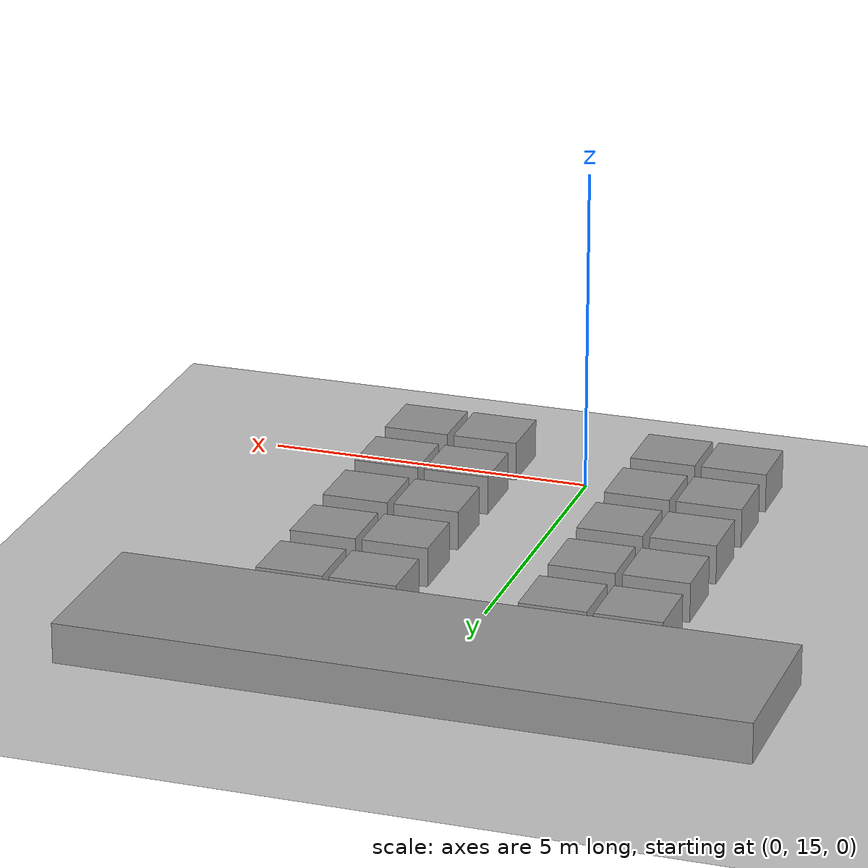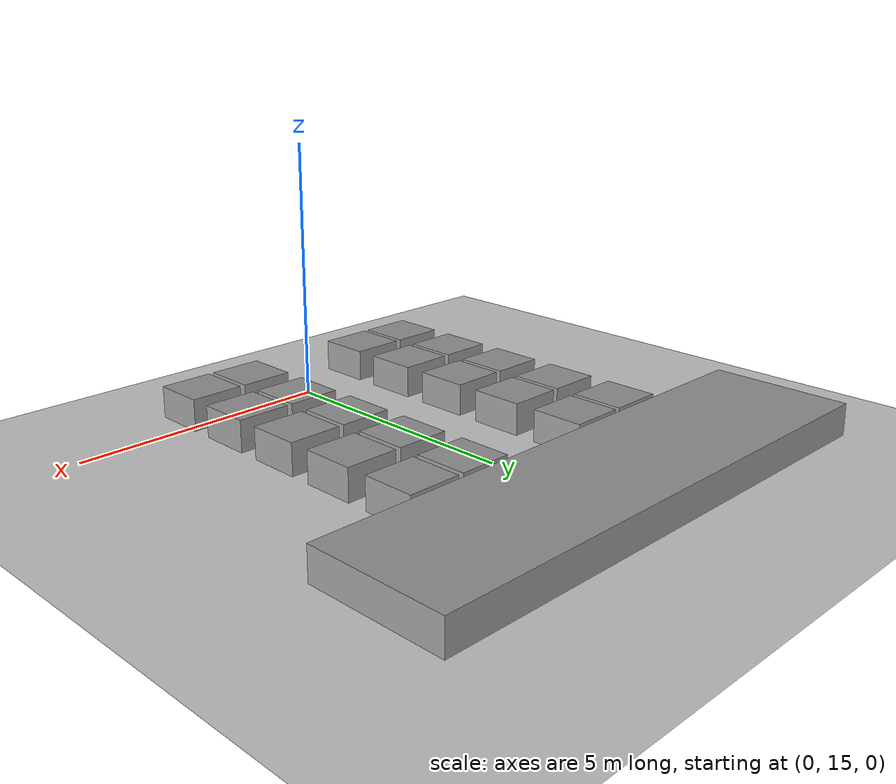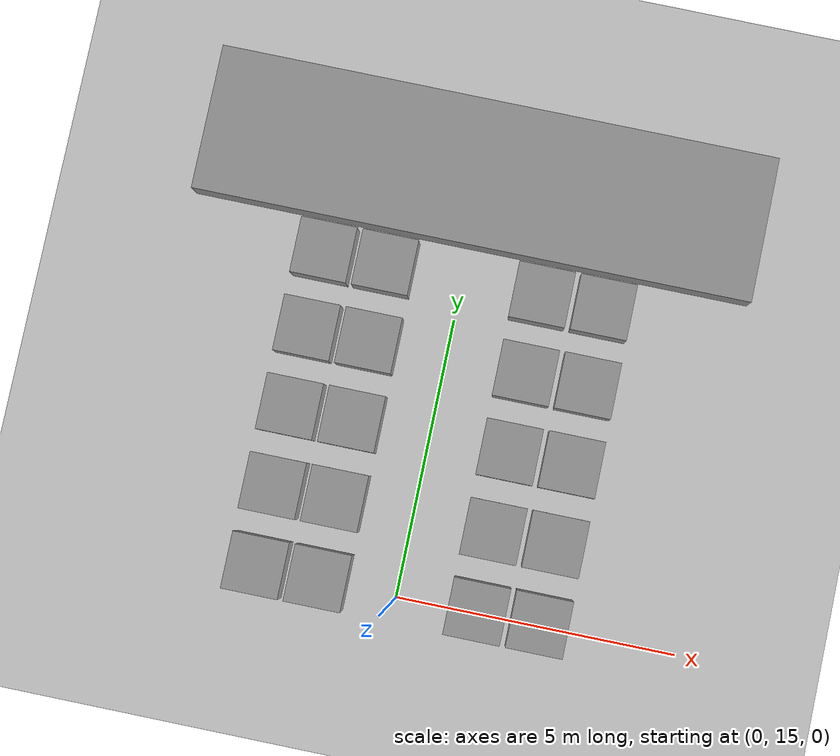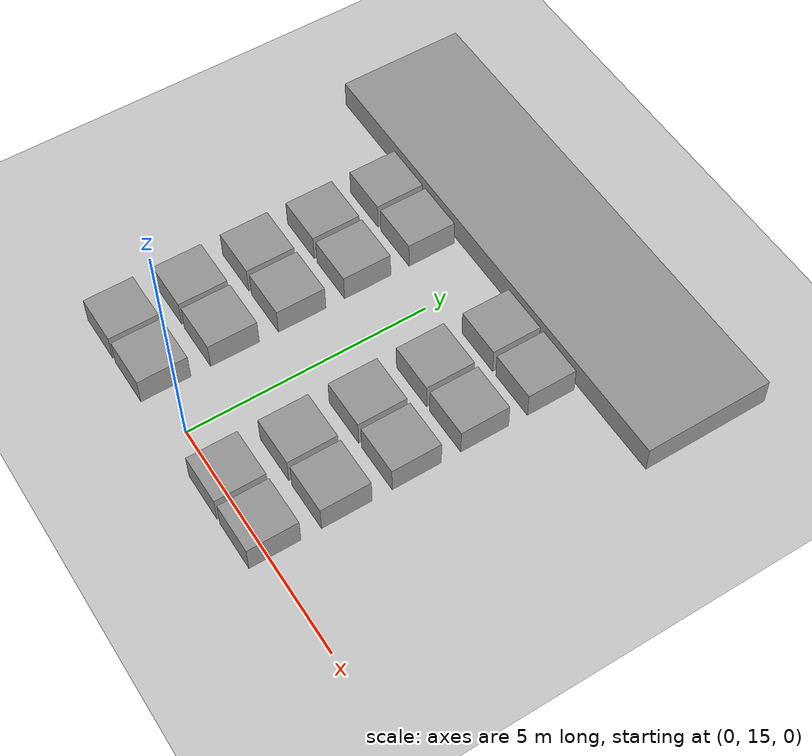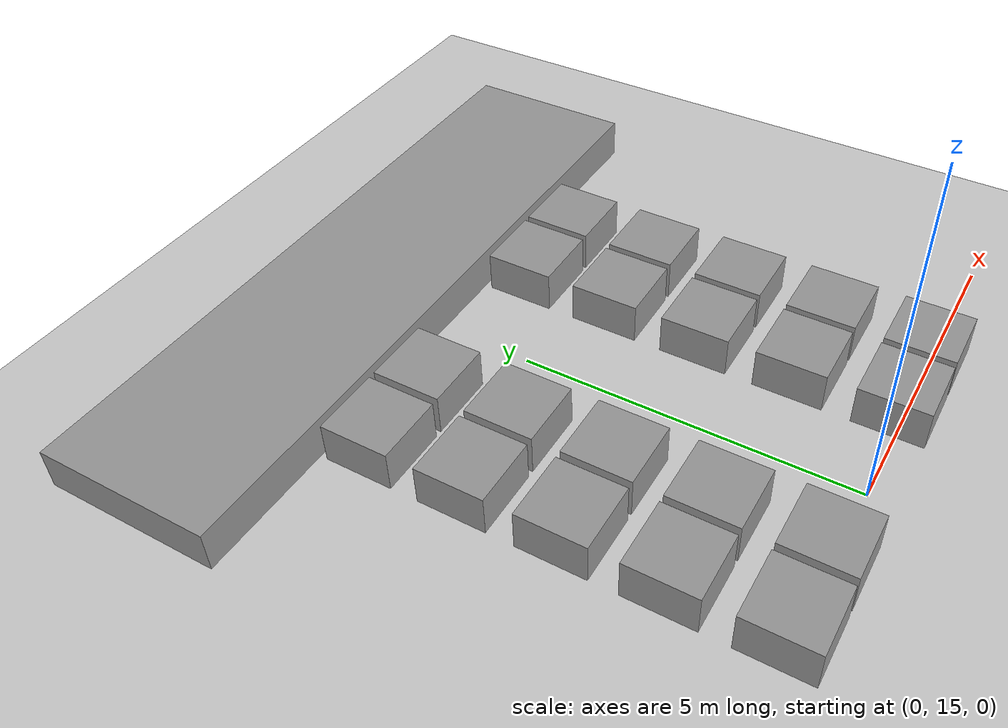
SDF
<sdf version="1.6">
 <world name="default">
  <model name="ground_plane">
   <static>1</static>
   <link name="link">
    <collision name="collision">
     <geometry><plane><normal>0 0 1</normal><size>100 100</size></plane></geometry>
     <surface>
      <contact><collide_bitmask>65535</collide_bitmask></contact>
      <friction><ode><mu>100</mu><mu2>50</mu2></ode></friction>
     </surface>
    </collision>
    <visual name="visual">
     <cast_shadows>0</cast_shadows>
     <geometry><plane><normal>0 0 1</normal><size>100 100</size></plane></geometry>
     <material>
      <script><uri>file://media/materials/scripts/gazebo.material</uri><name>Gazebo/Grey</name></script>
     </material>
    </visual>
   </link>
  </model>
  <model name="Estufa-objetos">
   <link name="link_0_clone_clone_32">
    <inertial>
     <mass>1</mass>
     <inertia>
      <ixx>0.166667</ixx>
      <ixy>0</ixy>
      <ixz>0</ixz>
      <iyy>0.166667</iyy>
      <iyz>0</iyz>
      <izz>0.166667</izz>
     </inertia>
    </inertial>
    <pose>2.5 10.1 0.5 0 -0 0</pose>
    <visual name="visual">
     <geometry><box><size>1 1 0.6</size></box></geometry>
     <material>
      <lighting>1</lighting>
      <script><uri>file://media/materials/scripts/gazebo.material</uri><name>Gazebo/Grey</name></script>
      <shader type="vertex"><normal_map>__default__</normal_map></shader>
      <ambient>0.3 0.3 0.3 1</ambient>
      <diffuse>0.7 0.7 0.7 1</diffuse>
      <specular>0.01 0.01 0.01 1</specular>
      <emissive>0 0 0 1</emissive>
     </material>
    </visual>
    <collision name="collision">
     <geometry><box><size>1 1 0.6</size></box></geometry>
     <surface>
      <friction>
       <ode><mu>1</mu><mu2>1</mu2><fdir1>0 0 0</fdir1><slip1>0</slip1><slip2>0</slip2></ode>
       <torsional>
        <coefficient>1</coefficient>
        <patch_radius>0</patch_radius>
        <surface_radius>0</surface_radius>
        <use_patch_radius>1</use_patch_radius>
        <ode><slip>0</slip></ode>
       </torsional>
      </friction>
      <bounce><restitution_coefficient>0</restitution_coefficient><threshold>1e+06</threshold></bounce>
      <contact>
       <collide_without_contact>0</collide_without_contact>
       <collide_without_contact_bitmask>1</collide_without_contact_bitmask>
       <collide_bitmask>1</collide_bitmask>
       <ode>
        <soft_cfm>0</soft_cfm>
        <soft_erp>0.2</soft_erp>
        <kp>1e+13</kp>
        <kd>1</kd>
        <max_vel>0.01</max_vel>
        <min_depth>0</min_depth>
       </ode>
       <bullet>
        <split_impulse>1</split_impulse>
        <split_impulse_penetration_threshold>-0.01</split_impulse_penetration_threshold>
        <soft_cfm>0</soft_cfm>
        <soft_erp>0.2</soft_erp>
        <kp>1e+13</kp>
        <kd>1</kd>
       </bullet>
      </contact>
     </surface>
    </collision>
   </link>
   <link name="link_0_clone_clone_33">
    <inertial>
     <mass>1</mass>
     <inertia>
      <ixx>0.166667</ixx>
      <ixy>0</ixy>
      <ixz>0</ixz>
      <iyy>0.166667</iyy>
      <iyz>0</iyz>
      <izz>0.166667</izz>
     </inertia>
    </inertial>
    <pose>1.4 10.1 0.5 0 -0 0</pose>
    <visual name="visual">
     <geometry><box><size>1 1 0.6</size></box></geometry>
     <material>
      <lighting>1</lighting>
      <script><uri>file://media/materials/scripts/gazebo.material</uri><name>Gazebo/Grey</name></script>
      <shader type="vertex"><normal_map>__default__</normal_map></shader>
      <ambient>0.3 0.3 0.3 1</ambient>
      <diffuse>0.7 0.7 0.7 1</diffuse>
      <specular>0.01 0.01 0.01 1</specular>
      <emissive>0 0 0 1</emissive>
     </material>
    </visual>
    <collision name="collision">
     <geometry><box><size>1 1 0.6</size></box></geometry>
     <surface>
      <friction>
       <ode><mu>1</mu><mu2>1</mu2><fdir1>0 0 0</fdir1><slip1>0</slip1><slip2>0</slip2></ode>
       <torsional>
        <coefficient>1</coefficient>
        <patch_radius>0</patch_radius>
        <surface_radius>0</surface_radius>
        <use_patch_radius>1</use_patch_radius>
        <ode><slip>0</slip></ode>
       </torsional>
      </friction>
      <bounce><restitution_coefficient>0</restitution_coefficient><threshold>1e+06</threshold></bounce>
      <contact>
       <collide_without_contact>0</collide_without_contact>
       <collide_without_contact_bitmask>1</collide_without_contact_bitmask>
       <collide_bitmask>1</collide_bitmask>
       <ode>
        <soft_cfm>0</soft_cfm>
        <soft_erp>0.2</soft_erp>
        <kp>1e+13</kp>
        <kd>1</kd>
        <max_vel>0.01</max_vel>
        <min_depth>0</min_depth>
       </ode>
       <bullet>
        <split_impulse>1</split_impulse>
        <split_impulse_penetration_threshold>-0.01</split_impulse_penetration_threshold>
        <soft_cfm>0</soft_cfm>
        <soft_erp>0.2</soft_erp>
        <kp>1e+13</kp>
        <kd>1</kd>
       </bullet>
      </contact>
     </surface>
    </collision>
   </link>
   <link name="link_0_clone_clone_34">
    <inertial>
     <mass>1</mass>
     <inertia>
      <ixx>0.166667</ixx>
      <ixy>0</ixy>
      <ixz>0</ixz>
      <iyy>0.166667</iyy>
      <iyz>0</iyz>
      <izz>0.166667</izz>
     </inertia>
    </inertial>
    <pose>-1.4 10.1 0.5 0 -0 0</pose>
    <visual name="visual">
     <geometry><box><size>1 1 0.6</size></box></geometry>
     <material>
      <lighting>1</lighting>
      <script><uri>file://media/materials/scripts/gazebo.material</uri><name>Gazebo/Grey</name></script>
      <shader type="vertex"><normal_map>__default__</normal_map></shader>
      <ambient>0.3 0.3 0.3 1</ambient>
      <diffuse>0.7 0.7 0.7 1</diffuse>
      <specular>0.01 0.01 0.01 1</specular>
      <emissive>0 0 0 1</emissive>
     </material>
    </visual>
    <collision name="collision">
     <geometry><box><size>1 1 0.6</size></box></geometry>
     <surface>
      <friction>
       <ode><mu>1</mu><mu2>1</mu2><fdir1>0 0 0</fdir1><slip1>0</slip1><slip2>0</slip2></ode>
       <torsional>
        <coefficient>1</coefficient>
        <patch_radius>0</patch_radius>
        <surface_radius>0</surface_radius>
        <use_patch_radius>1</use_patch_radius>
        <ode><slip>0</slip></ode>
       </torsional>
      </friction>
      <bounce><restitution_coefficient>0</restitution_coefficient><threshold>1e+06</threshold></bounce>
      <contact>
       <collide_without_contact>0</collide_without_contact>
       <collide_without_contact_bitmask>1</collide_without_contact_bitmask>
       <collide_bitmask>1</collide_bitmask>
       <ode>
        <soft_cfm>0</soft_cfm>
        <soft_erp>0.2</soft_erp>
        <kp>1e+13</kp>
        <kd>1</kd>
        <max_vel>0.01</max_vel>
        <min_depth>0</min_depth>
       </ode>
       <bullet>
        <split_impulse>1</split_impulse>
        <split_impulse_penetration_threshold>-0.01</split_impulse_penetration_threshold>
        <soft_cfm>0</soft_cfm>
        <soft_erp>0.2</soft_erp>
        <kp>1e+13</kp>
        <kd>1</kd>
       </bullet>
      </contact>
     </surface>
    </collision>
   </link>
   <link name="link_0_clone_clone_35">
    <inertial>
     <mass>1</mass>
     <inertia>
      <ixx>0.166667</ixx>
      <ixy>0</ixy>
      <ixz>0</ixz>
      <iyy>0.166667</iyy>
      <iyz>0</iyz>
      <izz>0.166667</izz>
     </inertia>
    </inertial>
    <pose>-2.5 10.1 0.5 0 -0 0</pose>
    <visual name="visual">
     <geometry><box><size>1 1 0.6</size></box></geometry>
     <material>
      <lighting>1</lighting>
      <script><uri>file://media/materials/scripts/gazebo.material</uri><name>Gazebo/Grey</name></script>
      <shader type="vertex"><normal_map>__default__</normal_map></shader>
      <ambient>0.3 0.3 0.3 1</ambient>
      <diffuse>0.7 0.7 0.7 1</diffuse>
      <specular>0.01 0.01 0.01 1</specular>
      <emissive>0 0 0 1</emissive>
     </material>
    </visual>
    <collision name="collision">
     <geometry><box><size>1 1 0.6</size></box></geometry>
     <surface>
      <friction>
       <ode><mu>1</mu><mu2>1</mu2><fdir1>0 0 0</fdir1><slip1>0</slip1><slip2>0</slip2></ode>
       <torsional>
        <coefficient>1</coefficient>
        <patch_radius>0</patch_radius>
        <surface_radius>0</surface_radius>
        <use_patch_radius>1</use_patch_radius>
        <ode><slip>0</slip></ode>
       </torsional>
      </friction>
      <bounce><restitution_coefficient>0</restitution_coefficient><threshold>1e+06</threshold></bounce>
      <contact>
       <collide_without_contact>0</collide_without_contact>
       <collide_without_contact_bitmask>1</collide_without_contact_bitmask>
       <collide_bitmask>1</collide_bitmask>
       <ode>
        <soft_cfm>0</soft_cfm>
        <soft_erp>0.2</soft_erp>
        <kp>1e+13</kp>
        <kd>1</kd>
        <max_vel>0.01</max_vel>
        <min_depth>0</min_depth>
       </ode>
       <bullet>
        <split_impulse>1</split_impulse>
        <split_impulse_penetration_threshold>-0.01</split_impulse_penetration_threshold>
        <soft_cfm>0</soft_cfm>
        <soft_erp>0.2</soft_erp>
        <kp>1e+13</kp>
        <kd>1</kd>
       </bullet>
      </contact>
     </surface>
    </collision>
   </link>
   <link name="link_0_clone_clone_36">
    <inertial>
     <mass>1</mass>
     <inertia>
      <ixx>0.166667</ixx>
      <ixy>0</ixy>
      <ixz>0</ixz>
      <iyy>0.166667</iyy>
      <iyz>0</iyz>
      <izz>0.166667</izz>
     </inertia>
    </inertial>
    <pose>2.5 11.5 0.5 0 -0 0</pose>
    <visual name="visual">
     <geometry><box><size>1 1 0.6</size></box></geometry>
     <material>
      <lighting>1</lighting>
      <script><uri>file://media/materials/scripts/gazebo.material</uri><name>Gazebo/Grey</name></script>
      <shader type="vertex"><normal_map>__default__</normal_map></shader>
      <ambient>0.3 0.3 0.3 1</ambient>
      <diffuse>0.7 0.7 0.7 1</diffuse>
      <specular>0.01 0.01 0.01 1</specular>
      <emissive>0 0 0 1</emissive>
     </material>
    </visual>
    <collision name="collision">
     <geometry><box><size>1 1 0.6</size></box></geometry>
     <surface>
      <friction>
       <ode><mu>1</mu><mu2>1</mu2><fdir1>0 0 0</fdir1><slip1>0</slip1><slip2>0</slip2></ode>
       <torsional>
        <coefficient>1</coefficient>
        <patch_radius>0</patch_radius>
        <surface_radius>0</surface_radius>
        <use_patch_radius>1</use_patch_radius>
        <ode><slip>0</slip></ode>
       </torsional>
      </friction>
      <bounce><restitution_coefficient>0</restitution_coefficient><threshold>1e+06</threshold></bounce>
      <contact>
       <collide_without_contact>0</collide_without_contact>
       <collide_without_contact_bitmask>1</collide_without_contact_bitmask>
       <collide_bitmask>1</collide_bitmask>
       <ode>
        <soft_cfm>0</soft_cfm>
        <soft_erp>0.2</soft_erp>
        <kp>1e+13</kp>
        <kd>1</kd>
        <max_vel>0.01</max_vel>
        <min_depth>0</min_depth>
       </ode>
       <bullet>
        <split_impulse>1</split_impulse>
        <split_impulse_penetration_threshold>-0.01</split_impulse_penetration_threshold>
        <soft_cfm>0</soft_cfm>
        <soft_erp>0.2</soft_erp>
        <kp>1e+13</kp>
        <kd>1</kd>
       </bullet>
      </contact>
     </surface>
    </collision>
   </link>
   <link name="link_0_clone_clone_37">
    <inertial>
     <mass>1</mass>
     <inertia>
      <ixx>0.166667</ixx>
      <ixy>0</ixy>
      <ixz>0</ixz>
      <iyy>0.166667</iyy>
      <iyz>0</iyz>
      <izz>0.166667</izz>
     </inertia>
    </inertial>
    <pose>1.4 11.5 0.5 0 -0 0</pose>
    <visual name="visual">
     <geometry><box><size>1 1 0.6</size></box></geometry>
     <material>
      <lighting>1</lighting>
      <script><uri>file://media/materials/scripts/gazebo.material</uri><name>Gazebo/Grey</name></script>
      <shader type="vertex"><normal_map>__default__</normal_map></shader>
      <ambient>0.3 0.3 0.3 1</ambient>
      <diffuse>0.7 0.7 0.7 1</diffuse>
      <specular>0.01 0.01 0.01 1</specular>
      <emissive>0 0 0 1</emissive>
     </material>
    </visual>
    <collision name="collision">
     <geometry><box><size>1 1 0.6</size></box></geometry>
     <surface>
      <friction>
       <ode><mu>1</mu><mu2>1</mu2><fdir1>0 0 0</fdir1><slip1>0</slip1><slip2>0</slip2></ode>
       <torsional>
        <coefficient>1</coefficient>
        <patch_radius>0</patch_radius>
        <surface_radius>0</surface_radius>
        <use_patch_radius>1</use_patch_radius>
        <ode><slip>0</slip></ode>
       </torsional>
      </friction>
      <bounce><restitution_coefficient>0</restitution_coefficient><threshold>1e+06</threshold></bounce>
      <contact>
       <collide_without_contact>0</collide_without_contact>
       <collide_without_contact_bitmask>1</collide_without_contact_bitmask>
       <collide_bitmask>1</collide_bitmask>
       <ode>
        <soft_cfm>0</soft_cfm>
        <soft_erp>0.2</soft_erp>
        <kp>1e+13</kp>
        <kd>1</kd>
        <max_vel>0.01</max_vel>
        <min_depth>0</min_depth>
       </ode>
       <bullet>
        <split_impulse>1</split_impulse>
        <split_impulse_penetration_threshold>-0.01</split_impulse_penetration_threshold>
        <soft_cfm>0</soft_cfm>
        <soft_erp>0.2</soft_erp>
        <kp>1e+13</kp>
        <kd>1</kd>
       </bullet>
      </contact>
     </surface>
    </collision>
   </link>
   <link name="link_0_clone_clone_38">
    <inertial>
     <mass>1</mass>
     <inertia>
      <ixx>0.166667</ixx>
      <ixy>0</ixy>
      <ixz>0</ixz>
      <iyy>0.166667</iyy>
      <iyz>0</iyz>
      <izz>0.166667</izz>
     </inertia>
    </inertial>
    <pose>-1.4 11.5 0.5 0 -0 0</pose>
    <visual name="visual">
     <geometry><box><size>1 1 0.6</size></box></geometry>
     <material>
      <lighting>1</lighting>
      <script><uri>file://media/materials/scripts/gazebo.material</uri><name>Gazebo/Grey</name></script>
      <shader type="vertex"><normal_map>__default__</normal_map></shader>
      <ambient>0.3 0.3 0.3 1</ambient>
      <diffuse>0.7 0.7 0.7 1</diffuse>
      <specular>0.01 0.01 0.01 1</specular>
      <emissive>0 0 0 1</emissive>
     </material>
    </visual>
    <collision name="collision">
     <geometry><box><size>1 1 0.6</size></box></geometry>
     <surface>
      <friction>
       <ode><mu>1</mu><mu2>1</mu2><fdir1>0 0 0</fdir1><slip1>0</slip1><slip2>0</slip2></ode>
       <torsional>
        <coefficient>1</coefficient>
        <patch_radius>0</patch_radius>
        <surface_radius>0</surface_radius>
        <use_patch_radius>1</use_patch_radius>
        <ode><slip>0</slip></ode>
       </torsional>
      </friction>
      <bounce><restitution_coefficient>0</restitution_coefficient><threshold>1e+06</threshold></bounce>
      <contact>
       <collide_without_contact>0</collide_without_contact>
       <collide_without_contact_bitmask>1</collide_without_contact_bitmask>
       <collide_bitmask>1</collide_bitmask>
       <ode>
        <soft_cfm>0</soft_cfm>
        <soft_erp>0.2</soft_erp>
        <kp>1e+13</kp>
        <kd>1</kd>
        <max_vel>0.01</max_vel>
        <min_depth>0</min_depth>
       </ode>
       <bullet>
        <split_impulse>1</split_impulse>
        <split_impulse_penetration_threshold>-0.01</split_impulse_penetration_threshold>
        <soft_cfm>0</soft_cfm>
        <soft_erp>0.2</soft_erp>
        <kp>1e+13</kp>
        <kd>1</kd>
       </bullet>
      </contact>
     </surface>
    </collision>
   </link>
   <link name="link_0_clone_clone_39">
    <inertial>
     <mass>1</mass>
     <inertia>
      <ixx>0.166667</ixx>
      <ixy>0</ixy>
      <ixz>0</ixz>
      <iyy>0.166667</iyy>
      <iyz>0</iyz>
      <izz>0.166667</izz>
     </inertia>
    </inertial>
    <pose>-2.5 11.5 0.5 0 -0 0</pose>
    <visual name="visual">
     <geometry><box><size>1 1 0.6</size></box></geometry>
     <material>
      <lighting>1</lighting>
      <script><uri>file://media/materials/scripts/gazebo.material</uri><name>Gazebo/Grey</name></script>
      <shader type="vertex"><normal_map>__default__</normal_map></shader>
      <ambient>0.3 0.3 0.3 1</ambient>
      <diffuse>0.7 0.7 0.7 1</diffuse>
      <specular>0.01 0.01 0.01 1</specular>
      <emissive>0 0 0 1</emissive>
     </material>
    </visual>
    <collision name="collision">
     <geometry><box><size>1 1 0.6</size></box></geometry>
     <surface>
      <friction>
       <ode><mu>1</mu><mu2>1</mu2><fdir1>0 0 0</fdir1><slip1>0</slip1><slip2>0</slip2></ode>
       <torsional>
        <coefficient>1</coefficient>
        <patch_radius>0</patch_radius>
        <surface_radius>0</surface_radius>
        <use_patch_radius>1</use_patch_radius>
        <ode><slip>0</slip></ode>
       </torsional>
      </friction>
      <bounce><restitution_coefficient>0</restitution_coefficient><threshold>1e+06</threshold></bounce>
      <contact>
       <collide_without_contact>0</collide_without_contact>
       <collide_without_contact_bitmask>1</collide_without_contact_bitmask>
       <collide_bitmask>1</collide_bitmask>
       <ode>
        <soft_cfm>0</soft_cfm>
        <soft_erp>0.2</soft_erp>
        <kp>1e+13</kp>
        <kd>1</kd>
        <max_vel>0.01</max_vel>
        <min_depth>0</min_depth>
       </ode>
       <bullet>
        <split_impulse>1</split_impulse>
        <split_impulse_penetration_threshold>-0.01</split_impulse_penetration_threshold>
        <soft_cfm>0</soft_cfm>
        <soft_erp>0.2</soft_erp>
        <kp>1e+13</kp>
        <kd>1</kd>
       </bullet>
      </contact>
     </surface>
    </collision>
   </link>
   <link name="link_0_clone_clone_40">
    <inertial>
     <mass>1</mass>
     <inertia>
      <ixx>0.166667</ixx>
      <ixy>0</ixy>
      <ixz>0</ixz>
      <iyy>0.166667</iyy>
      <iyz>0</iyz>
      <izz>0.166667</izz>
     </inertia>
    </inertial>
    <pose>2.5 12.9 0.5 0 -0 0</pose>
    <visual name="visual">
     <geometry><box><size>1 1 0.6</size></box></geometry>
     <material>
      <lighting>1</lighting>
      <script><uri>file://media/materials/scripts/gazebo.material</uri><name>Gazebo/Grey</name></script>
      <shader type="vertex"><normal_map>__default__</normal_map></shader>
      <ambient>0.3 0.3 0.3 1</ambient>
      <diffuse>0.7 0.7 0.7 1</diffuse>
      <specular>0.01 0.01 0.01 1</specular>
      <emissive>0 0 0 1</emissive>
     </material>
    </visual>
    <collision name="collision">
     <geometry><box><size>1 1 0.6</size></box></geometry>
     <surface>
      <friction>
       <ode><mu>1</mu><mu2>1</mu2><fdir1>0 0 0</fdir1><slip1>0</slip1><slip2>0</slip2></ode>
       <torsional>
        <coefficient>1</coefficient>
        <patch_radius>0</patch_radius>
        <surface_radius>0</surface_radius>
        <use_patch_radius>1</use_patch_radius>
        <ode><slip>0</slip></ode>
       </torsional>
      </friction>
      <bounce><restitution_coefficient>0</restitution_coefficient><threshold>1e+06</threshold></bounce>
      <contact>
       <collide_without_contact>0</collide_without_contact>
       <collide_without_contact_bitmask>1</collide_without_contact_bitmask>
       <collide_bitmask>1</collide_bitmask>
       <ode>
        <soft_cfm>0</soft_cfm>
        <soft_erp>0.2</soft_erp>
        <kp>1e+13</kp>
        <kd>1</kd>
        <max_vel>0.01</max_vel>
        <min_depth>0</min_depth>
       </ode>
       <bullet>
        <split_impulse>1</split_impulse>
        <split_impulse_penetration_threshold>-0.01</split_impulse_penetration_threshold>
        <soft_cfm>0</soft_cfm>
        <soft_erp>0.2</soft_erp>
        <kp>1e+13</kp>
        <kd>1</kd>
       </bullet>
      </contact>
     </surface>
    </collision>
   </link>
   <link name="link_0_clone_clone_41">
    <inertial>
     <mass>1</mass>
     <inertia>
      <ixx>0.166667</ixx>
      <ixy>0</ixy>
      <ixz>0</ixz>
      <iyy>0.166667</iyy>
      <iyz>0</iyz>
      <izz>0.166667</izz>
     </inertia>
    </inertial>
    <pose>2.5 14.3 0.5 0 -0 0</pose>
    <visual name="visual">
     <geometry><box><size>1 1 0.6</size></box></geometry>
     <material>
      <lighting>1</lighting>
      <script><uri>file://media/materials/scripts/gazebo.material</uri><name>Gazebo/Grey</name></script>
      <shader type="vertex"><normal_map>__default__</normal_map></shader>
      <ambient>0.3 0.3 0.3 1</ambient>
      <diffuse>0.7 0.7 0.7 1</diffuse>
      <specular>0.01 0.01 0.01 1</specular>
      <emissive>0 0 0 1</emissive>
     </material>
    </visual>
    <collision name="collision">
     <geometry><box><size>1 1 0.6</size></box></geometry>
     <surface>
      <friction>
       <ode><mu>1</mu><mu2>1</mu2><fdir1>0 0 0</fdir1><slip1>0</slip1><slip2>0</slip2></ode>
       <torsional>
        <coefficient>1</coefficient>
        <patch_radius>0</patch_radius>
        <surface_radius>0</surface_radius>
        <use_patch_radius>1</use_patch_radius>
        <ode><slip>0</slip></ode>
       </torsional>
      </friction>
      <bounce><restitution_coefficient>0</restitution_coefficient><threshold>1e+06</threshold></bounce>
      <contact>
       <collide_without_contact>0</collide_without_contact>
       <collide_without_contact_bitmask>1</collide_without_contact_bitmask>
       <collide_bitmask>1</collide_bitmask>
       <ode>
        <soft_cfm>0</soft_cfm>
        <soft_erp>0.2</soft_erp>
        <kp>1e+13</kp>
        <kd>1</kd>
        <max_vel>0.01</max_vel>
        <min_depth>0</min_depth>
       </ode>
       <bullet>
        <split_impulse>1</split_impulse>
        <split_impulse_penetration_threshold>-0.01</split_impulse_penetration_threshold>
        <soft_cfm>0</soft_cfm>
        <soft_erp>0.2</soft_erp>
        <kp>1e+13</kp>
        <kd>1</kd>
       </bullet>
      </contact>
     </surface>
    </collision>
   </link>
   <link name="link_0_clone_clone_42">
    <inertial>
     <mass>1</mass>
     <inertia>
      <ixx>0.166667</ixx>
      <ixy>0</ixy>
      <ixz>0</ixz>
      <iyy>0.166667</iyy>
      <iyz>0</iyz>
      <izz>0.166667</izz>
     </inertia>
    </inertial>
    <pose>2.5 15.7 0.5 0 -0 0</pose>
    <visual name="visual">
     <geometry><box><size>1 1 0.6</size></box></geometry>
     <material>
      <lighting>1</lighting>
      <script><uri>file://media/materials/scripts/gazebo.material</uri><name>Gazebo/Grey</name></script>
      <shader type="vertex"><normal_map>__default__</normal_map></shader>
      <ambient>0.3 0.3 0.3 1</ambient>
      <diffuse>0.7 0.7 0.7 1</diffuse>
      <specular>0.01 0.01 0.01 1</specular>
      <emissive>0 0 0 1</emissive>
     </material>
    </visual>
    <collision name="collision">
     <geometry><box><size>1 1 0.6</size></box></geometry>
     <surface>
      <friction>
       <ode><mu>1</mu><mu2>1</mu2><fdir1>0 0 0</fdir1><slip1>0</slip1><slip2>0</slip2></ode>
       <torsional>
        <coefficient>1</coefficient>
        <patch_radius>0</patch_radius>
        <surface_radius>0</surface_radius>
        <use_patch_radius>1</use_patch_radius>
        <ode><slip>0</slip></ode>
       </torsional>
      </friction>
      <bounce><restitution_coefficient>0</restitution_coefficient><threshold>1e+06</threshold></bounce>
      <contact>
       <collide_without_contact>0</collide_without_contact>
       <collide_without_contact_bitmask>1</collide_without_contact_bitmask>
       <collide_bitmask>1</collide_bitmask>
       <ode>
        <soft_cfm>0</soft_cfm>
        <soft_erp>0.2</soft_erp>
        <kp>1e+13</kp>
        <kd>1</kd>
        <max_vel>0.01</max_vel>
        <min_depth>0</min_depth>
       </ode>
       <bullet>
        <split_impulse>1</split_impulse>
        <split_impulse_penetration_threshold>-0.01</split_impulse_penetration_threshold>
        <soft_cfm>0</soft_cfm>
        <soft_erp>0.2</soft_erp>
        <kp>1e+13</kp>
        <kd>1</kd>
       </bullet>
      </contact>
     </surface>
    </collision>
   </link>
   <link name="link_0_clone_clone_43">
    <inertial>
     <mass>1</mass>
     <inertia>
      <ixx>0.166667</ixx>
      <ixy>0</ixy>
      <ixz>0</ixz>
      <iyy>0.166667</iyy>
      <iyz>0</iyz>
      <izz>0.166667</izz>
     </inertia>
    </inertial>
    <pose>1.4 12.9 0.5 0 -0 0</pose>
    <visual name="visual">
     <geometry><box><size>1 1 0.6</size></box></geometry>
     <material>
      <lighting>1</lighting>
      <script><uri>file://media/materials/scripts/gazebo.material</uri><name>Gazebo/Grey</name></script>
      <shader type="vertex"><normal_map>__default__</normal_map></shader>
      <ambient>0.3 0.3 0.3 1</ambient>
      <diffuse>0.7 0.7 0.7 1</diffuse>
      <specular>0.01 0.01 0.01 1</specular>
      <emissive>0 0 0 1</emissive>
     </material>
    </visual>
    <collision name="collision">
     <geometry><box><size>1 1 0.6</size></box></geometry>
     <surface>
      <friction>
       <ode><mu>1</mu><mu2>1</mu2><fdir1>0 0 0</fdir1><slip1>0</slip1><slip2>0</slip2></ode>
       <torsional>
        <coefficient>1</coefficient>
        <patch_radius>0</patch_radius>
        <surface_radius>0</surface_radius>
        <use_patch_radius>1</use_patch_radius>
        <ode><slip>0</slip></ode>
       </torsional>
      </friction>
      <bounce><restitution_coefficient>0</restitution_coefficient><threshold>1e+06</threshold></bounce>
      <contact>
       <collide_without_contact>0</collide_without_contact>
       <collide_without_contact_bitmask>1</collide_without_contact_bitmask>
       <collide_bitmask>1</collide_bitmask>
       <ode>
        <soft_cfm>0</soft_cfm>
        <soft_erp>0.2</soft_erp>
        <kp>1e+13</kp>
        <kd>1</kd>
        <max_vel>0.01</max_vel>
        <min_depth>0</min_depth>
       </ode>
       <bullet>
        <split_impulse>1</split_impulse>
        <split_impulse_penetration_threshold>-0.01</split_impulse_penetration_threshold>
        <soft_cfm>0</soft_cfm>
        <soft_erp>0.2</soft_erp>
        <kp>1e+13</kp>
        <kd>1</kd>
       </bullet>
      </contact>
     </surface>
    </collision>
   </link>
   <link name="link_0_clone_clone_44">
    <inertial>
     <mass>1</mass>
     <inertia>
      <ixx>0.166667</ixx>
      <ixy>0</ixy>
      <ixz>0</ixz>
      <iyy>0.166667</iyy>
      <iyz>0</iyz>
      <izz>0.166667</izz>
     </inertia>
    </inertial>
    <pose>1.4 14.3 0.5 0 -0 0</pose>
    <visual name="visual">
     <geometry><box><size>1 1 0.6</size></box></geometry>
     <material>
      <lighting>1</lighting>
      <script><uri>file://media/materials/scripts/gazebo.material</uri><name>Gazebo/Grey</name></script>
      <shader type="vertex"><normal_map>__default__</normal_map></shader>
      <ambient>0.3 0.3 0.3 1</ambient>
      <diffuse>0.7 0.7 0.7 1</diffuse>
      <specular>0.01 0.01 0.01 1</specular>
      <emissive>0 0 0 1</emissive>
     </material>
    </visual>
    <collision name="collision">
     <geometry><box><size>1 1 0.6</size></box></geometry>
     <surface>
      <friction>
       <ode><mu>1</mu><mu2>1</mu2><fdir1>0 0 0</fdir1><slip1>0</slip1><slip2>0</slip2></ode>
       <torsional>
        <coefficient>1</coefficient>
        <patch_radius>0</patch_radius>
        <surface_radius>0</surface_radius>
        <use_patch_radius>1</use_patch_radius>
        <ode><slip>0</slip></ode>
       </torsional>
      </friction>
      <bounce><restitution_coefficient>0</restitution_coefficient><threshold>1e+06</threshold></bounce>
      <contact>
       <collide_without_contact>0</collide_without_contact>
       <collide_without_contact_bitmask>1</collide_without_contact_bitmask>
       <collide_bitmask>1</collide_bitmask>
       <ode>
        <soft_cfm>0</soft_cfm>
        <soft_erp>0.2</soft_erp>
        <kp>1e+13</kp>
        <kd>1</kd>
        <max_vel>0.01</max_vel>
        <min_depth>0</min_depth>
       </ode>
       <bullet>
        <split_impulse>1</split_impulse>
        <split_impulse_penetration_threshold>-0.01</split_impulse_penetration_threshold>
        <soft_cfm>0</soft_cfm>
        <soft_erp>0.2</soft_erp>
        <kp>1e+13</kp>
        <kd>1</kd>
       </bullet>
      </contact>
     </surface>
    </collision>
   </link>
   <link name="link_0_clone_clone_45">
    <inertial>
     <mass>1</mass>
     <inertia>
      <ixx>0.166667</ixx>
      <ixy>0</ixy>
      <ixz>0</ixz>
      <iyy>0.166667</iyy>
      <iyz>0</iyz>
      <izz>0.166667</izz>
     </inertia>
    </inertial>
    <pose>1.4 15.7 0.5 0 -0 0</pose>
    <visual name="visual">
     <geometry><box><size>1 1 0.6</size></box></geometry>
     <material>
      <lighting>1</lighting>
      <script><uri>file://media/materials/scripts/gazebo.material</uri><name>Gazebo/Grey</name></script>
      <shader type="vertex"><normal_map>__default__</normal_map></shader>
      <ambient>0.3 0.3 0.3 1</ambient>
      <diffuse>0.7 0.7 0.7 1</diffuse>
      <specular>0.01 0.01 0.01 1</specular>
      <emissive>0 0 0 1</emissive>
     </material>
    </visual>
    <collision name="collision">
     <geometry><box><size>1 1 0.6</size></box></geometry>
     <surface>
      <friction>
       <ode><mu>1</mu><mu2>1</mu2><fdir1>0 0 0</fdir1><slip1>0</slip1><slip2>0</slip2></ode>
       <torsional>
        <coefficient>1</coefficient>
        <patch_radius>0</patch_radius>
        <surface_radius>0</surface_radius>
        <use_patch_radius>1</use_patch_radius>
        <ode><slip>0</slip></ode>
       </torsional>
      </friction>
      <bounce><restitution_coefficient>0</restitution_coefficient><threshold>1e+06</threshold></bounce>
      <contact>
       <collide_without_contact>0</collide_without_contact>
       <collide_without_contact_bitmask>1</collide_without_contact_bitmask>
       <collide_bitmask>1</collide_bitmask>
       <ode>
        <soft_cfm>0</soft_cfm>
        <soft_erp>0.2</soft_erp>
        <kp>1e+13</kp>
        <kd>1</kd>
        <max_vel>0.01</max_vel>
        <min_depth>0</min_depth>
       </ode>
       <bullet>
        <split_impulse>1</split_impulse>
        <split_impulse_penetration_threshold>-0.01</split_impulse_penetration_threshold>
        <soft_cfm>0</soft_cfm>
        <soft_erp>0.2</soft_erp>
        <kp>1e+13</kp>
        <kd>1</kd>
       </bullet>
      </contact>
     </surface>
    </collision>
   </link>
   <link name="link_0_clone_clone_46">
    <inertial>
     <mass>1</mass>
     <inertia>
      <ixx>0.166667</ixx>
      <ixy>0</ixy>
      <ixz>0</ixz>
      <iyy>0.166667</iyy>
      <iyz>0</iyz>
      <izz>0.166667</izz>
     </inertia>
    </inertial>
    <pose>-1.4 12.9 0.5 0 -0 0</pose>
    <visual name="visual">
     <geometry><box><size>1 1 0.6</size></box></geometry>
     <material>
      <lighting>1</lighting>
      <script><uri>file://media/materials/scripts/gazebo.material</uri><name>Gazebo/Grey</name></script>
      <shader type="vertex"><normal_map>__default__</normal_map></shader>
      <ambient>0.3 0.3 0.3 1</ambient>
      <diffuse>0.7 0.7 0.7 1</diffuse>
      <specular>0.01 0.01 0.01 1</specular>
      <emissive>0 0 0 1</emissive>
     </material>
    </visual>
    <collision name="collision">
     <geometry><box><size>1 1 0.6</size></box></geometry>
     <surface>
      <friction>
       <ode><mu>1</mu><mu2>1</mu2><fdir1>0 0 0</fdir1><slip1>0</slip1><slip2>0</slip2></ode>
       <torsional>
        <coefficient>1</coefficient>
        <patch_radius>0</patch_radius>
        <surface_radius>0</surface_radius>
        <use_patch_radius>1</use_patch_radius>
        <ode><slip>0</slip></ode>
       </torsional>
      </friction>
      <bounce><restitution_coefficient>0</restitution_coefficient><threshold>1e+06</threshold></bounce>
      <contact>
       <collide_without_contact>0</collide_without_contact>
       <collide_without_contact_bitmask>1</collide_without_contact_bitmask>
       <collide_bitmask>1</collide_bitmask>
       <ode>
        <soft_cfm>0</soft_cfm>
        <soft_erp>0.2</soft_erp>
        <kp>1e+13</kp>
        <kd>1</kd>
        <max_vel>0.01</max_vel>
        <min_depth>0</min_depth>
       </ode>
       <bullet>
        <split_impulse>1</split_impulse>
        <split_impulse_penetration_threshold>-0.01</split_impulse_penetration_threshold>
        <soft_cfm>0</soft_cfm>
        <soft_erp>0.2</soft_erp>
        <kp>1e+13</kp>
        <kd>1</kd>
       </bullet>
      </contact>
     </surface>
    </collision>
   </link>
   <link name="link_0_clone_clone_47">
    <inertial>
     <mass>1</mass>
     <inertia>
      <ixx>0.166667</ixx>
      <ixy>0</ixy>
      <ixz>0</ixz>
      <iyy>0.166667</iyy>
      <iyz>0</iyz>
      <izz>0.166667</izz>
     </inertia>
    </inertial>
    <pose>-1.4 14.3 0.5 0 -0 0</pose>
    <visual name="visual">
     <geometry><box><size>1 1 0.6</size></box></geometry>
     <material>
      <lighting>1</lighting>
      <script><uri>file://media/materials/scripts/gazebo.material</uri><name>Gazebo/Grey</name></script>
      <shader type="vertex"><normal_map>__default__</normal_map></shader>
      <ambient>0.3 0.3 0.3 1</ambient>
      <diffuse>0.7 0.7 0.7 1</diffuse>
      <specular>0.01 0.01 0.01 1</specular>
      <emissive>0 0 0 1</emissive>
     </material>
    </visual>
    <collision name="collision">
     <geometry><box><size>1 1 0.6</size></box></geometry>
     <surface>
      <friction>
       <ode><mu>1</mu><mu2>1</mu2><fdir1>0 0 0</fdir1><slip1>0</slip1><slip2>0</slip2></ode>
       <torsional>
        <coefficient>1</coefficient>
        <patch_radius>0</patch_radius>
        <surface_radius>0</surface_radius>
        <use_patch_radius>1</use_patch_radius>
        <ode><slip>0</slip></ode>
       </torsional>
      </friction>
      <bounce><restitution_coefficient>0</restitution_coefficient><threshold>1e+06</threshold></bounce>
      <contact>
       <collide_without_contact>0</collide_without_contact>
       <collide_without_contact_bitmask>1</collide_without_contact_bitmask>
       <collide_bitmask>1</collide_bitmask>
       <ode>
        <soft_cfm>0</soft_cfm>
        <soft_erp>0.2</soft_erp>
        <kp>1e+13</kp>
        <kd>1</kd>
        <max_vel>0.01</max_vel>
        <min_depth>0</min_depth>
       </ode>
       <bullet>
        <split_impulse>1</split_impulse>
        <split_impulse_penetration_threshold>-0.01</split_impulse_penetration_threshold>
        <soft_cfm>0</soft_cfm>
        <soft_erp>0.2</soft_erp>
        <kp>1e+13</kp>
        <kd>1</kd>
       </bullet>
      </contact>
     </surface>
    </collision>
   </link>
   <link name="link_0_clone_clone_48">
    <inertial>
     <mass>1</mass>
     <inertia>
      <ixx>0.166667</ixx>
      <ixy>0</ixy>
      <ixz>0</ixz>
      <iyy>0.166667</iyy>
      <iyz>0</iyz>
      <izz>0.166667</izz>
     </inertia>
    </inertial>
    <pose>-1.4 15.7 0.5 0 -0 0</pose>
    <visual name="visual">
     <geometry><box><size>1 1 0.6</size></box></geometry>
     <material>
      <lighting>1</lighting>
      <script><uri>file://media/materials/scripts/gazebo.material</uri><name>Gazebo/Grey</name></script>
      <shader type="vertex"><normal_map>__default__</normal_map></shader>
      <ambient>0.3 0.3 0.3 1</ambient>
      <diffuse>0.7 0.7 0.7 1</diffuse>
      <specular>0.01 0.01 0.01 1</specular>
      <emissive>0 0 0 1</emissive>
     </material>
    </visual>
    <collision name="collision">
     <geometry><box><size>1 1 0.6</size></box></geometry>
     <surface>
      <friction>
       <ode><mu>1</mu><mu2>1</mu2><fdir1>0 0 0</fdir1><slip1>0</slip1><slip2>0</slip2></ode>
       <torsional>
        <coefficient>1</coefficient>
        <patch_radius>0</patch_radius>
        <surface_radius>0</surface_radius>
        <use_patch_radius>1</use_patch_radius>
        <ode><slip>0</slip></ode>
       </torsional>
      </friction>
      <bounce><restitution_coefficient>0</restitution_coefficient><threshold>1e+06</threshold></bounce>
      <contact>
       <collide_without_contact>0</collide_without_contact>
       <collide_without_contact_bitmask>1</collide_without_contact_bitmask>
       <collide_bitmask>1</collide_bitmask>
       <ode>
        <soft_cfm>0</soft_cfm>
        <soft_erp>0.2</soft_erp>
        <kp>1e+13</kp>
        <kd>1</kd>
        <max_vel>0.01</max_vel>
        <min_depth>0</min_depth>
       </ode>
       <bullet>
        <split_impulse>1</split_impulse>
        <split_impulse_penetration_threshold>-0.01</split_impulse_penetration_threshold>
        <soft_cfm>0</soft_cfm>
        <soft_erp>0.2</soft_erp>
        <kp>1e+13</kp>
        <kd>1</kd>
       </bullet>
      </contact>
     </surface>
    </collision>
   </link>
   <link name="link_0_clone_clone_49">
    <inertial>
     <mass>1</mass>
     <inertia>
      <ixx>0.166667</ixx>
      <ixy>0</ixy>
      <ixz>0</ixz>
      <iyy>0.166667</iyy>
      <iyz>0</iyz>
      <izz>0.166667</izz>
     </inertia>
    </inertial>
    <pose>-2.5 12.9 0.5 0 -0 0</pose>
    <visual name="visual">
     <geometry><box><size>1 1 0.6</size></box></geometry>
     <material>
      <lighting>1</lighting>
      <script><uri>file://media/materials/scripts/gazebo.material</uri><name>Gazebo/Grey</name></script>
      <shader type="vertex"><normal_map>__default__</normal_map></shader>
      <ambient>0.3 0.3 0.3 1</ambient>
      <diffuse>0.7 0.7 0.7 1</diffuse>
      <specular>0.01 0.01 0.01 1</specular>
      <emissive>0 0 0 1</emissive>
     </material>
    </visual>
    <collision name="collision">
     <geometry><box><size>1 1 0.6</size></box></geometry>
     <surface>
      <friction>
       <ode><mu>1</mu><mu2>1</mu2><fdir1>0 0 0</fdir1><slip1>0</slip1><slip2>0</slip2></ode>
       <torsional>
        <coefficient>1</coefficient>
        <patch_radius>0</patch_radius>
        <surface_radius>0</surface_radius>
        <use_patch_radius>1</use_patch_radius>
        <ode><slip>0</slip></ode>
       </torsional>
      </friction>
      <bounce><restitution_coefficient>0</restitution_coefficient><threshold>1e+06</threshold></bounce>
      <contact>
       <collide_without_contact>0</collide_without_contact>
       <collide_without_contact_bitmask>1</collide_without_contact_bitmask>
       <collide_bitmask>1</collide_bitmask>
       <ode>
        <soft_cfm>0</soft_cfm>
        <soft_erp>0.2</soft_erp>
        <kp>1e+13</kp>
        <kd>1</kd>
        <max_vel>0.01</max_vel>
        <min_depth>0</min_depth>
       </ode>
       <bullet>
        <split_impulse>1</split_impulse>
        <split_impulse_penetration_threshold>-0.01</split_impulse_penetration_threshold>
        <soft_cfm>0</soft_cfm>
        <soft_erp>0.2</soft_erp>
        <kp>1e+13</kp>
        <kd>1</kd>
       </bullet>
      </contact>
     </surface>
    </collision>
   </link>
   <link name="link_0_clone_clone_50">
    <inertial>
     <mass>1</mass>
     <inertia>
      <ixx>0.166667</ixx>
      <ixy>0</ixy>
      <ixz>0</ixz>
      <iyy>0.166667</iyy>
      <iyz>0</iyz>
      <izz>0.166667</izz>
     </inertia>
    </inertial>
    <pose>-2.5 14.3 0.5 0 -0 0</pose>
    <visual name="visual">
     <geometry><box><size>1 1 0.6</size></box></geometry>
     <material>
      <lighting>1</lighting>
      <script><uri>file://media/materials/scripts/gazebo.material</uri><name>Gazebo/Grey</name></script>
      <shader type="vertex"><normal_map>__default__</normal_map></shader>
      <ambient>0.3 0.3 0.3 1</ambient>
      <diffuse>0.7 0.7 0.7 1</diffuse>
      <specular>0.01 0.01 0.01 1</specular>
      <emissive>0 0 0 1</emissive>
     </material>
    </visual>
    <collision name="collision">
     <geometry><box><size>1 1 0.6</size></box></geometry>
     <surface>
      <friction>
       <ode><mu>1</mu><mu2>1</mu2><fdir1>0 0 0</fdir1><slip1>0</slip1><slip2>0</slip2></ode>
       <torsional>
        <coefficient>1</coefficient>
        <patch_radius>0</patch_radius>
        <surface_radius>0</surface_radius>
        <use_patch_radius>1</use_patch_radius>
        <ode><slip>0</slip></ode>
       </torsional>
      </friction>
      <bounce><restitution_coefficient>0</restitution_coefficient><threshold>1e+06</threshold></bounce>
      <contact>
       <collide_without_contact>0</collide_without_contact>
       <collide_without_contact_bitmask>1</collide_without_contact_bitmask>
       <collide_bitmask>1</collide_bitmask>
       <ode>
        <soft_cfm>0</soft_cfm>
        <soft_erp>0.2</soft_erp>
        <kp>1e+13</kp>
        <kd>1</kd>
        <max_vel>0.01</max_vel>
        <min_depth>0</min_depth>
       </ode>
       <bullet>
        <split_impulse>1</split_impulse>
        <split_impulse_penetration_threshold>-0.01</split_impulse_penetration_threshold>
        <soft_cfm>0</soft_cfm>
        <soft_erp>0.2</soft_erp>
        <kp>1e+13</kp>
        <kd>1</kd>
       </bullet>
      </contact>
     </surface>
    </collision>
   </link>
   <link name="link_0_clone_clone_51">
    <inertial>
     <mass>1</mass>
     <inertia>
      <ixx>0.166667</ixx>
      <ixy>0</ixy>
      <ixz>0</ixz>
      <iyy>0.166667</iyy>
      <iyz>0</iyz>
      <izz>0.166667</izz>
     </inertia>
    </inertial>
    <pose>-2.5 15.7 0.5 0 -0 0</pose>
    <visual name="visual">
     <geometry><box><size>1 1 0.6</size></box></geometry>
     <material>
      <lighting>1</lighting>
      <script><uri>file://media/materials/scripts/gazebo.material</uri><name>Gazebo/Grey</name></script>
      <shader type="vertex"><normal_map>__default__</normal_map></shader>
      <ambient>0.3 0.3 0.3 1</ambient>
      <diffuse>0.7 0.7 0.7 1</diffuse>
      <specular>0.01 0.01 0.01 1</specular>
      <emissive>0 0 0 1</emissive>
     </material>
    </visual>
    <collision name="collision">
     <geometry><box><size>1 1 0.6</size></box></geometry>
     <surface>
      <friction>
       <ode><mu>1</mu><mu2>1</mu2><fdir1>0 0 0</fdir1><slip1>0</slip1><slip2>0</slip2></ode>
       <torsional>
        <coefficient>1</coefficient>
        <patch_radius>0</patch_radius>
        <surface_radius>0</surface_radius>
        <use_patch_radius>1</use_patch_radius>
        <ode><slip>0</slip></ode>
       </torsional>
      </friction>
      <bounce><restitution_coefficient>0</restitution_coefficient><threshold>1e+06</threshold></bounce>
      <contact>
       <collide_without_contact>0</collide_without_contact>
       <collide_without_contact_bitmask>1</collide_without_contact_bitmask>
       <collide_bitmask>1</collide_bitmask>
       <ode>
        <soft_cfm>0</soft_cfm>
        <soft_erp>0.2</soft_erp>
        <kp>1e+13</kp>
        <kd>1</kd>
        <max_vel>0.01</max_vel>
        <min_depth>0</min_depth>
       </ode>
       <bullet>
        <split_impulse>1</split_impulse>
        <split_impulse_penetration_threshold>-0.01</split_impulse_penetration_threshold>
        <soft_cfm>0</soft_cfm>
        <soft_erp>0.2</soft_erp>
        <kp>1e+13</kp>
        <kd>1</kd>
       </bullet>
      </contact>
     </surface>
    </collision>
   </link>
   <link name="link_0_clone_clone_52_clone">
    <inertial>
     <mass>1</mass>
     <inertia>
      <ixx>0.166667</ixx>
      <ixy>0</ixy>
      <ixz>0</ixz>
      <iyy>0.166667</iyy>
      <iyz>0</iyz>
      <izz>0.166667</izz>
     </inertia>
    </inertial>
    <pose>0 17.6 0.5 0 -0 0</pose>
    <visual name="visual">
     <geometry><box><size>10 2.6 0.6</size></box></geometry>
     <material>
      <lighting>1</lighting>
      <script><uri>file://media/materials/scripts/gazebo.material</uri><name>Gazebo/Grey</name></script>
      <shader type="vertex"><normal_map>__default__</normal_map></shader>
      <ambient>0.3 0.3 0.3 1</ambient>
      <diffuse>0.7 0.7 0.7 1</diffuse>
      <specular>0.01 0.01 0.01 1</specular>
      <emissive>0 0 0 1</emissive>
     </material>
    </visual>
    <collision name="collision">
     <geometry><box><size>10 2.6 0.6</size></box></geometry>
     <surface>
      <friction>
       <ode><mu>1</mu><mu2>1</mu2><fdir1>0 0 0</fdir1><slip1>0</slip1><slip2>0</slip2></ode>
       <torsional>
        <coefficient>1</coefficient>
        <patch_radius>0</patch_radius>
        <surface_radius>0</surface_radius>
        <use_patch_radius>1</use_patch_radius>
        <ode><slip>0</slip></ode>
       </torsional>
      </friction>
      <bounce><restitution_coefficient>0</restitution_coefficient><threshold>1e+06</threshold></bounce>
      <contact>
       <collide_without_contact>0</collide_without_contact>
       <collide_without_contact_bitmask>1</collide_without_contact_bitmask>
       <collide_bitmask>1</collide_bitmask>
       <ode>
        <soft_cfm>0</soft_cfm>
        <soft_erp>0.2</soft_erp>
        <kp>1e+13</kp>
        <kd>1</kd>
        <max_vel>0.01</max_vel>
        <min_depth>0</min_depth>
       </ode>
       <bullet>
        <split_impulse>1</split_impulse>
        <split_impulse_penetration_threshold>-0.01</split_impulse_penetration_threshold>
        <soft_cfm>0</soft_cfm>
        <soft_erp>0.2</soft_erp>
        <kp>1e+13</kp>
        <kd>1</kd>
       </bullet>
      </contact>
     </surface>
    </collision>
   </link>
   <static>1</static>
   <pose>0.033468 4.9867 0 0 -0 0</pose>
  </model>
 </world>
</sdf>
